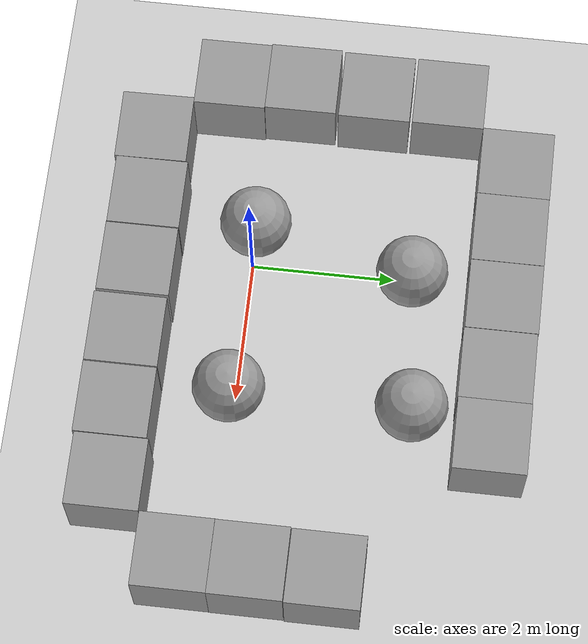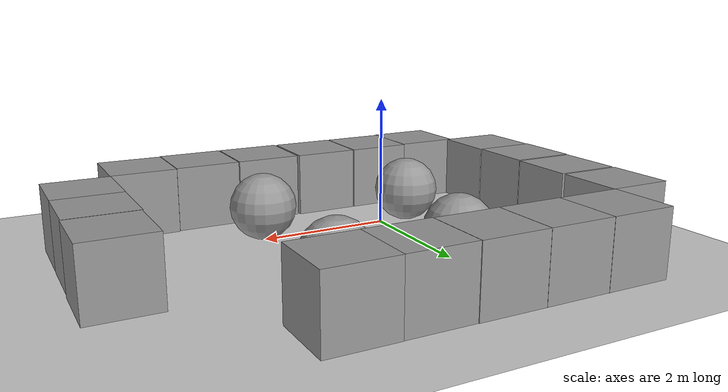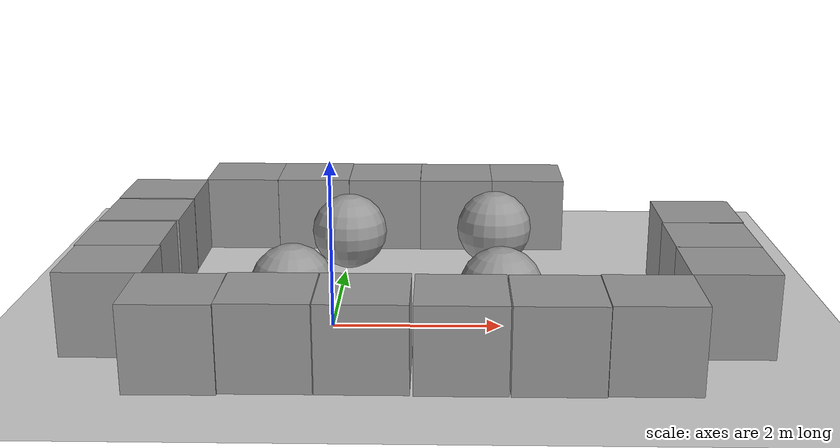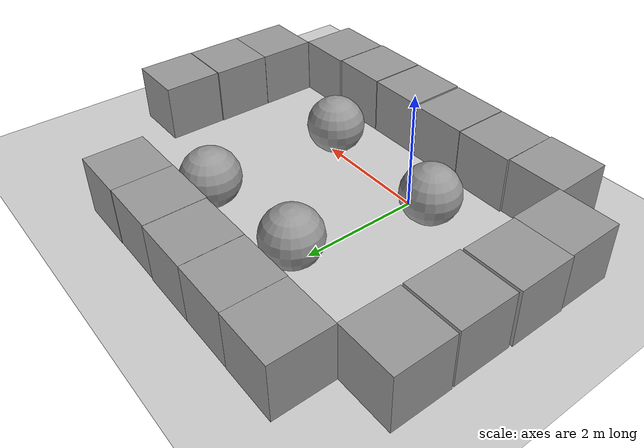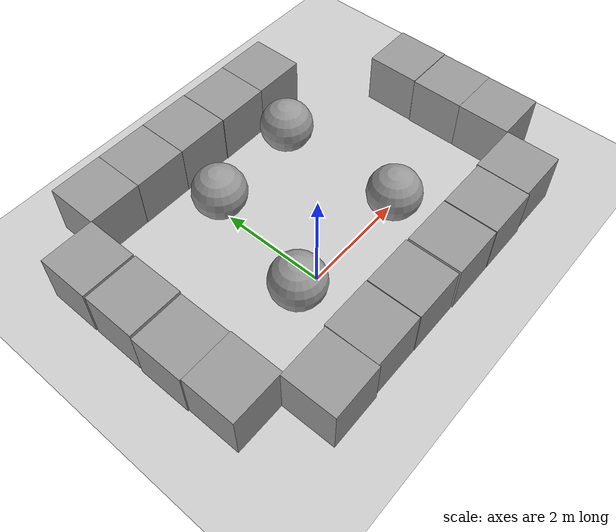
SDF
<sdf version="1.4">
 <world name="default">
  <light name="sun" type="directional">
   <pose>0 0 10 0 -0 0</pose>
   <diffuse>0.8 0.8 0.8 1</diffuse>
   <specular>0.2 0.2 0.2 1</specular>
   <attenuation>
    <range>1000</range>
    <constant>0.9</constant>
    <linear>0.01</linear>
    <quadratic>0.001</quadratic>
   </attenuation>
   <direction>-0.5 0.1 -0.9</direction>
  </light>
  <model name="ground_plane">
   <static>1</static>
   <link name="link">
    <collision name="collision">
     <geometry><plane><normal>0 0 1</normal><size>100 100</size></plane></geometry>
     <surface><friction><ode><mu>100</mu><mu2>50</mu2></ode></friction></surface>
    </collision>
    <visual name="visual">
     <cast_shadows>0</cast_shadows>
     <geometry><plane><normal>0 0 1</normal><size>100 100</size></plane></geometry>
     <material>
      <script><uri>file://media/materials/scripts/gazebo.material</uri><name>Gazebo/Grey</name></script>
     </material>
    </visual>
    <velocity_decay><linear>0</linear><angular>0</angular></velocity_decay>
   </link>
  </model>
  <physics type="ode">
   <max_step_size>0.001</max_step_size>
   <real_time_factor>1</real_time_factor>
   <real_time_update_rate>1000</real_time_update_rate>
   <gravity>0 0 -9.8</gravity>
  </physics>
  <scene><ambient>0.4 0.4 0.4 1</ambient><background>0.7 0.7 0.7 1</background><shadows>1</shadows></scene>
  <model name="unit_box_1">
   <pose>0.481593 3.52363 0.5 0 -0 0</pose>
   <link name="link">
    <inertial>
     <mass>1</mass>
     <inertia><ixx>1</ixx><ixy>0</ixy><ixz>0</ixz><iyy>1</iyy><iyz>0</iyz><izz>1</izz></inertia>
    </inertial>
    <collision name="collision"><geometry><box><size>1 1 1</size></box></geometry></collision>
    <visual name="visual">
     <geometry><box><size>1 1 1</size></box></geometry>
     <material>
      <script><uri>file://media/materials/scripts/gazebo.material</uri><name>Gazebo/Grey</name></script>
     </material>
    </visual>
    <velocity_decay><linear>0</linear><angular>0</angular></velocity_decay>
   </link>
   <static>0</static>
  </model>
  <model name="unit_box_1_0">
   <pose>1.48484 3.51369 0.5 0 -0 1e-06</pose>
   <link name="link">
    <inertial>
     <mass>1</mass>
     <inertia><ixx>1</ixx><ixy>0</ixy><ixz>0</ixz><iyy>1</iyy><iyz>0</iyz><izz>1</izz></inertia>
    </inertial>
    <collision name="collision"><geometry><box><size>1 1 1</size></box></geometry></collision>
    <visual name="visual">
     <geometry><box><size>1 1 1</size></box></geometry>
     <material>
      <script><uri>file://media/materials/scripts/gazebo.material</uri><name>Gazebo/Grey</name></script>
     </material>
    </visual>
    <velocity_decay><linear>0</linear><angular>0</angular></velocity_decay>
   </link>
   <static>0</static>
  </model>
  <model name="unit_box_3">
   <pose>2.48484 3.51896 0.5 0 -0 1e-06</pose>
   <link name="link">
    <inertial>
     <mass>1</mass>
     <inertia><ixx>1</ixx><ixy>0</ixy><ixz>0</ixz><iyy>1</iyy><iyz>0</iyz><izz>1</izz></inertia>
    </inertial>
    <collision name="collision"><geometry><box><size>1 1 1</size></box></geometry></collision>
    <visual name="visual">
     <geometry><box><size>1 1 1</size></box></geometry>
     <material>
      <script><uri>file://media/materials/scripts/gazebo.material</uri><name>Gazebo/Grey</name></script>
     </material>
    </visual>
    <velocity_decay><linear>0</linear><angular>0</angular></velocity_decay>
   </link>
   <static>0</static>
  </model>
  <model name="unit_box_1_1">
   <pose>4.53598 1.52163 0.5 0 -0 -0.000973</pose>
   <link name="link">
    <inertial>
     <mass>1</mass>
     <inertia><ixx>1</ixx><ixy>0</ixy><ixz>0</ixz><iyy>1</iyy><iyz>0</iyz><izz>1</izz></inertia>
    </inertial>
    <collision name="collision"><geometry><box><size>1 1 1</size></box></geometry></collision>
    <visual name="visual">
     <geometry><box><size>1 1 1</size></box></geometry>
     <material>
      <script><uri>file://media/materials/scripts/gazebo.material</uri><name>Gazebo/Grey</name></script>
     </material>
    </visual>
    <velocity_decay><linear>0</linear><angular>0</angular></velocity_decay>
   </link>
   <static>0</static>
  </model>
  <model name="unit_box_2_1">
   <pose>4.52278 0.512737 0.5 0 -0 -0.000613</pose>
   <link name="link">
    <inertial>
     <mass>1</mass>
     <inertia><ixx>1</ixx><ixy>0</ixy><ixz>0</ixz><iyy>1</iyy><iyz>0</iyz><izz>1</izz></inertia>
    </inertial>
    <collision name="collision"><geometry><box><size>1 1 1</size></box></geometry></collision>
    <visual name="visual">
     <geometry><box><size>1 1 1</size></box></geometry>
     <material>
      <script><uri>file://media/materials/scripts/gazebo.material</uri><name>Gazebo/Grey</name></script>
     </material>
    </visual>
    <velocity_decay><linear>0</linear><angular>0</angular></velocity_decay>
   </link>
   <static>0</static>
  </model>
  <model name="unit_box_3_0">
   <pose>4.51974 -0.487483 0.5 0 -0 -0.000192</pose>
   <link name="link">
    <inertial>
     <mass>1</mass>
     <inertia><ixx>1</ixx><ixy>0</ixy><ixz>0</ixz><iyy>1</iyy><iyz>0</iyz><izz>1</izz></inertia>
    </inertial>
    <collision name="collision"><geometry><box><size>1 1 1</size></box></geometry></collision>
    <visual name="visual">
     <geometry><box><size>1 1 1</size></box></geometry>
     <material>
      <script><uri>file://media/materials/scripts/gazebo.material</uri><name>Gazebo/Grey</name></script>
     </material>
    </visual>
    <velocity_decay><linear>0</linear><angular>0</angular></velocity_decay>
   </link>
   <static>0</static>
  </model>
  <model name="unit_box_4">
   <pose>3.52706 -1.49842 0.5 0 -0 0</pose>
   <link name="link">
    <inertial>
     <mass>1</mass>
     <inertia><ixx>1</ixx><ixy>0</ixy><ixz>0</ixz><iyy>1</iyy><iyz>0</iyz><izz>1</izz></inertia>
    </inertial>
    <collision name="collision"><geometry><box><size>1 1 1</size></box></geometry></collision>
    <visual name="visual">
     <geometry><box><size>1 1 1</size></box></geometry>
     <material>
      <script><uri>file://media/materials/scripts/gazebo.material</uri><name>Gazebo/Grey</name></script>
     </material>
    </visual>
    <velocity_decay><linear>0</linear><angular>0</angular></velocity_decay>
   </link>
   <static>0</static>
  </model>
  <model name="unit_box_5">
   <pose>2.51871 -1.52546 0.5 0 -0 0</pose>
   <link name="link">
    <inertial>
     <mass>1</mass>
     <inertia><ixx>1</ixx><ixy>0</ixy><ixz>0</ixz><iyy>1</iyy><iyz>0</iyz><izz>1</izz></inertia>
    </inertial>
    <collision name="collision"><geometry><box><size>1 1 1</size></box></geometry></collision>
    <visual name="visual">
     <geometry><box><size>1 1 1</size></box></geometry>
     <material>
      <script><uri>file://media/materials/scripts/gazebo.material</uri><name>Gazebo/Grey</name></script>
     </material>
    </visual>
    <velocity_decay><linear>0</linear><angular>0</angular></velocity_decay>
   </link>
   <static>0</static>
  </model>
  <model name="unit_box_6">
   <pose>1.50316 -1.52423 0.5 0 -0 0</pose>
   <link name="link">
    <inertial>
     <mass>1</mass>
     <inertia><ixx>1</ixx><ixy>0</ixy><ixz>0</ixz><iyy>1</iyy><iyz>0</iyz><izz>1</izz></inertia>
    </inertial>
    <collision name="collision"><geometry><box><size>1 1 1</size></box></geometry></collision>
    <visual name="visual">
     <geometry><box><size>1 1 1</size></box></geometry>
     <material>
      <script><uri>file://media/materials/scripts/gazebo.material</uri><name>Gazebo/Grey</name></script>
     </material>
    </visual>
    <velocity_decay><linear>0</linear><angular>0</angular></velocity_decay>
   </link>
   <static>0</static>
  </model>
  <model name="unit_box_7">
   <pose>0.467391 -1.50927 0.5 0 -0 0</pose>
   <link name="link">
    <inertial>
     <mass>1</mass>
     <inertia><ixx>1</ixx><ixy>0</ixy><ixz>0</ixz><iyy>1</iyy><iyz>0</iyz><izz>1</izz></inertia>
    </inertial>
    <collision name="collision"><geometry><box><size>1 1 1</size></box></geometry></collision>
    <visual name="visual">
     <geometry><box><size>1 1 1</size></box></geometry>
     <material>
      <script><uri>file://media/materials/scripts/gazebo.material</uri><name>Gazebo/Grey</name></script>
     </material>
    </visual>
    <velocity_decay><linear>0</linear><angular>0</angular></velocity_decay>
   </link>
   <static>0</static>
  </model>
  <model name="unit_box_8">
   <pose>-0.520493 3.52451 0.5 0 -0 -0.000273</pose>
   <link name="link">
    <inertial>
     <mass>1</mass>
     <inertia><ixx>1</ixx><ixy>0</ixy><ixz>0</ixz><iyy>1</iyy><iyz>0</iyz><izz>1</izz></inertia>
    </inertial>
    <collision name="collision"><geometry><box><size>1 1 1</size></box></geometry></collision>
    <visual name="visual">
     <geometry><box><size>1 1 1</size></box></geometry>
     <material>
      <script><uri>file://media/materials/scripts/gazebo.material</uri><name>Gazebo/Grey</name></script>
     </material>
    </visual>
    <velocity_decay><linear>0</linear><angular>0</angular></velocity_decay>
   </link>
   <static>0</static>
  </model>
  <model name="unit_box_9">
   <pose>-0.544664 -1.50612 0.5 0 -0 0.002897</pose>
   <link name="link">
    <inertial>
     <mass>1</mass>
     <inertia><ixx>1</ixx><ixy>0</ixy><ixz>0</ixz><iyy>1</iyy><iyz>0</iyz><izz>1</izz></inertia>
    </inertial>
    <collision name="collision"><geometry><box><size>1 1 1</size></box></geometry></collision>
    <visual name="visual">
     <geometry><box><size>1 1 1</size></box></geometry>
     <material>
      <script><uri>file://media/materials/scripts/gazebo.material</uri><name>Gazebo/Grey</name></script>
     </material>
    </visual>
    <velocity_decay><linear>0</linear><angular>0</angular></velocity_decay>
   </link>
   <static>0</static>
  </model>
  <model name="unit_box_10">
   <pose>-1.52093 3.52875 0.5 0 -0 -0.001121</pose>
   <link name="link">
    <inertial>
     <mass>1</mass>
     <inertia><ixx>1</ixx><ixy>0</ixy><ixz>0</ixz><iyy>1</iyy><iyz>0</iyz><izz>1</izz></inertia>
    </inertial>
    <collision name="collision"><geometry><box><size>1 1 1</size></box></geometry></collision>
    <visual name="visual">
     <geometry><box><size>1 1 1</size></box></geometry>
     <material>
      <script><uri>file://media/materials/scripts/gazebo.material</uri><name>Gazebo/Grey</name></script>
     </material>
    </visual>
    <velocity_decay><linear>0</linear><angular>0</angular></velocity_decay>
   </link>
   <static>0</static>
  </model>
  <model name="unit_box_11">
   <pose>-1.54865 -1.54444 0.5 0 -0 0.011653</pose>
   <link name="link">
    <inertial>
     <mass>1</mass>
     <inertia><ixx>1</ixx><ixy>0</ixy><ixz>0</ixz><iyy>1</iyy><iyz>0</iyz><izz>1</izz></inertia>
    </inertial>
    <collision name="collision"><geometry><box><size>1 1 1</size></box></geometry></collision>
    <visual name="visual">
     <geometry><box><size>1 1 1</size></box></geometry>
     <material>
      <script><uri>file://media/materials/scripts/gazebo.material</uri><name>Gazebo/Grey</name></script>
     </material>
    </visual>
    <velocity_decay><linear>0</linear><angular>0</angular></velocity_decay>
   </link>
   <static>0</static>
  </model>
  <model name="unit_box_12">
   <pose>-2.50613 2.52998 0.5 0 -0 -0.001396</pose>
   <link name="link">
    <inertial>
     <mass>1</mass>
     <inertia><ixx>1</ixx><ixy>0</ixy><ixz>0</ixz><iyy>1</iyy><iyz>0</iyz><izz>1</izz></inertia>
    </inertial>
    <collision name="collision"><geometry><box><size>1 1 1</size></box></geometry></collision>
    <visual name="visual">
     <geometry><box><size>1 1 1</size></box></geometry>
     <material>
      <script><uri>file://media/materials/scripts/gazebo.material</uri><name>Gazebo/Grey</name></script>
     </material>
    </visual>
    <velocity_decay><linear>0</linear><angular>0</angular></velocity_decay>
   </link>
   <static>0</static>
  </model>
  <model name="unit_box_13">
   <pose>-2.50063 1.49098 0.5 0 -0 0</pose>
   <link name="link">
    <inertial>
     <mass>1</mass>
     <inertia><ixx>1</ixx><ixy>0</ixy><ixz>0</ixz><iyy>1</iyy><iyz>0</iyz><izz>1</izz></inertia>
    </inertial>
    <collision name="collision"><geometry><box><size>1 1 1</size></box></geometry></collision>
    <visual name="visual">
     <geometry><box><size>1 1 1</size></box></geometry>
     <material>
      <script><uri>file://media/materials/scripts/gazebo.material</uri><name>Gazebo/Grey</name></script>
     </material>
    </visual>
    <velocity_decay><linear>0</linear><angular>0</angular></velocity_decay>
   </link>
   <static>0</static>
  </model>
  <model name="unit_box_14">
   <pose>-2.51782 0.44766 0.5 0 -0 0.005356</pose>
   <link name="link">
    <inertial>
     <mass>1</mass>
     <inertia><ixx>1</ixx><ixy>0</ixy><ixz>0</ixz><iyy>1</iyy><iyz>0</iyz><izz>1</izz></inertia>
    </inertial>
    <collision name="collision"><geometry><box><size>1 1 1</size></box></geometry></collision>
    <visual name="visual">
     <geometry><box><size>1 1 1</size></box></geometry>
     <material>
      <script><uri>file://media/materials/scripts/gazebo.material</uri><name>Gazebo/Grey</name></script>
     </material>
    </visual>
    <velocity_decay><linear>0</linear><angular>0</angular></velocity_decay>
   </link>
   <static>0</static>
  </model>
  <model name="unit_box_15">
   <pose>-2.49312 -0.552232 0.5 0 -0 0.005354</pose>
   <link name="link">
    <inertial>
     <mass>1</mass>
     <inertia><ixx>1</ixx><ixy>0</ixy><ixz>0</ixz><iyy>1</iyy><iyz>0</iyz><izz>1</izz></inertia>
    </inertial>
    <collision name="collision"><geometry><box><size>1 1 1</size></box></geometry></collision>
    <visual name="visual">
     <geometry><box><size>1 1 1</size></box></geometry>
     <material>
      <script><uri>file://media/materials/scripts/gazebo.material</uri><name>Gazebo/Grey</name></script>
     </material>
    </visual>
    <velocity_decay><linear>0</linear><angular>0</angular></velocity_decay>
   </link>
   <static>0</static>
  </model>
  <model name="unit_sphere_1">
   <pose>1.98768 -0.081871 0.5 -0.004169 0.00037 0.00507</pose>
   <link name="link">
    <inertial>
     <mass>1</mass>
     <inertia><ixx>1</ixx><ixy>0</ixy><ixz>0</ixz><iyy>1</iyy><iyz>0</iyz><izz>1</izz></inertia>
    </inertial>
    <collision name="collision"><geometry><sphere><radius>0.5</radius></sphere></geometry></collision>
    <visual name="visual">
     <geometry><sphere><radius>0.5</radius></sphere></geometry>
     <material>
      <script><uri>file://media/materials/scripts/gazebo.material</uri><name>Gazebo/Grey</name></script>
     </material>
    </visual>
    <velocity_decay><linear>0</linear><angular>0</angular></velocity_decay>
   </link>
   <static>0</static>
  </model>
  <model name="unit_sphere_2">
   <pose>2 2.4185 0.5 0 -0 0</pose>
   <link name="link">
    <inertial>
     <mass>1</mass>
     <inertia><ixx>1</ixx><ixy>0</ixy><ixz>0</ixz><iyy>1</iyy><iyz>0</iyz><izz>1</izz></inertia>
    </inertial>
    <collision name="collision"><geometry><sphere><radius>0.5</radius></sphere></geometry></collision>
    <visual name="visual">
     <geometry><sphere><radius>0.5</radius></sphere></geometry>
     <material>
      <script><uri>file://media/materials/scripts/gazebo.material</uri><name>Gazebo/Grey</name></script>
     </material>
    </visual>
    <velocity_decay><linear>0</linear><angular>0</angular></velocity_decay>
   </link>
   <static>0</static>
  </model>
  <model name="unit_sphere_3">
   <pose>-0.471528 0 0.5 0 -0 0</pose>
   <link name="link">
    <inertial>
     <mass>1</mass>
     <inertia><ixx>1</ixx><ixy>0</ixy><ixz>0</ixz><iyy>1</iyy><iyz>0</iyz><izz>1</izz></inertia>
    </inertial>
    <collision name="collision"><geometry><sphere><radius>0.5</radius></sphere></geometry></collision>
    <visual name="visual">
     <geometry><sphere><radius>0.5</radius></sphere></geometry>
     <material>
      <script><uri>file://media/materials/scripts/gazebo.material</uri><name>Gazebo/Grey</name></script>
     </material>
    </visual>
    <velocity_decay><linear>0</linear><angular>0</angular></velocity_decay>
   </link>
   <static>0</static>
  </model>
  <model name="unit_sphere_4">
   <pose>0.040469 2.24198 0.5 -5.9e-05 -0.000505 1.9e-05</pose>
   <link name="link">
    <inertial>
     <mass>1</mass>
     <inertia><ixx>1</ixx><ixy>0</ixy><ixz>0</ixz><iyy>1</iyy><iyz>0</iyz><izz>1</izz></inertia>
    </inertial>
    <collision name="collision"><geometry><sphere><radius>0.5</radius></sphere></geometry></collision>
    <visual name="visual">
     <geometry><sphere><radius>0.5</radius></sphere></geometry>
     <material>
      <script><uri>file://media/materials/scripts/gazebo.material</uri><name>Gazebo/Grey</name></script>
     </material>
    </visual>
    <velocity_decay><linear>0</linear><angular>0</angular></velocity_decay>
   </link>
   <static>0</static>
  </model>
 </world>
</sdf>
